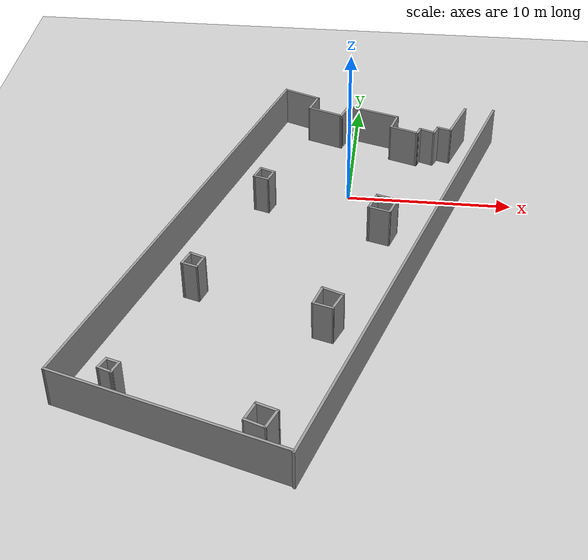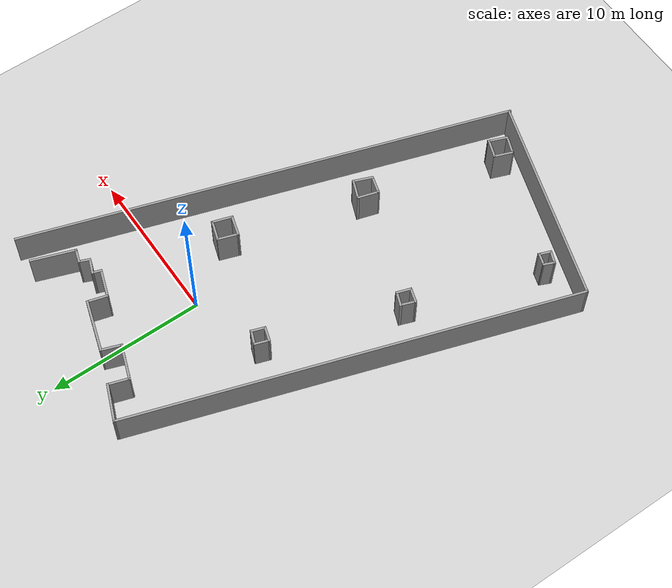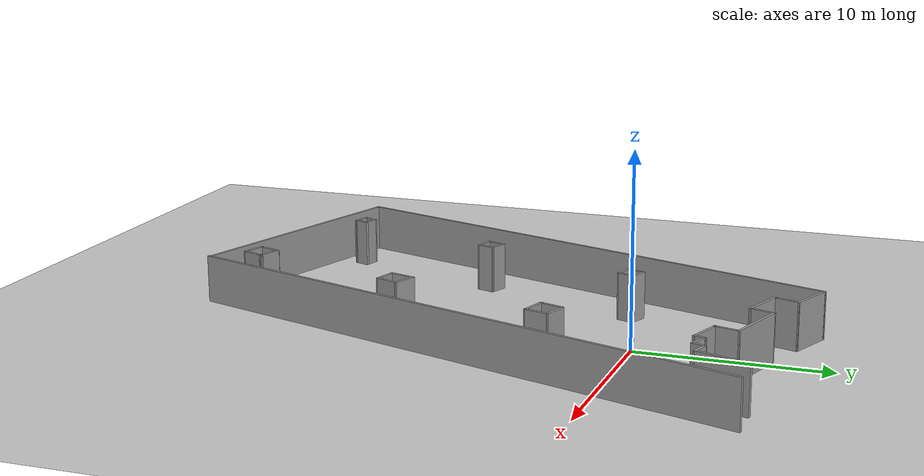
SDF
<sdf version="1.6">
 <world name="default">
  <light name="sun" type="directional">
   <pose>0 0 10 0 -0 0</pose>
   <diffuse>0.8 0.8 0.8 1</diffuse>
   <specular>0.1 0.1 0.1 1</specular>
   <attenuation>
    <range>1000</range>
    <constant>0.9</constant>
    <linear>0.01</linear>
    <quadratic>0.001</quadratic>
   </attenuation>
   <direction>-0.5 0.5 -1</direction>
  </light>
  <model name="ground_plane">
   <static>1</static>
   <link name="link">
    <collision name="collision">
     <geometry><plane><normal>0 0 1</normal><size>100 100</size></plane></geometry>
     <surface><friction><ode><mu>100</mu><mu2>50</mu2></ode></friction></surface>
    </collision>
    <visual name="visual">
     <cast_shadows>0</cast_shadows>
     <geometry><plane><normal>0 0 1</normal><size>100 100</size></plane></geometry>
     <material>
      <script><uri>file://media/materials/scripts/gazebo.material</uri><name>Gazebo/Grey</name></script>
     </material>
    </visual>
   </link>
  </model>
  <gravity>0 0 -9.8</gravity>
  <magnetic_field>6e-06 2.3e-05 -4.2e-05</magnetic_field>
  <atmosphere type="adiabatic"/>
  <physics name="default_physics" default="0" type="ode">
   <max_step_size>0.001</max_step_size>
   <real_time_factor>1</real_time_factor>
   <real_time_update_rate>1000</real_time_update_rate>
  </physics>
  <scene><ambient>0.4 0.4 0.4 1</ambient><background>0.7 0.7 0.7 1</background><shadows>1</shadows></scene>
  <spherical_coordinates>
   <surface_model>EARTH_WGS84</surface_model>
   <latitude_deg>0</latitude_deg>
   <longitude_deg>0</longitude_deg>
   <elevation>0</elevation>
   <heading_deg>0</heading_deg>
  </spherical_coordinates>
  <model name="test002">
   <pose>-2.39588 -7.39046 0 0 -0 0</pose>
   <link name="Wall_1">
    <collision name="Wall_1_Collision">
     <geometry><box><size>32.0866 0.15 2.5</size></box></geometry>
     <pose>0 0 1.25 0 -0 0</pose>
    </collision>
    <visual name="Wall_1_Visual">
     <pose>0 0 1.25 0 -0 0</pose>
     <geometry><box><size>32.0866 0.15 2.5</size></box></geometry>
     <material>
      <script><uri>file://media/materials/scripts/gazebo.material</uri><name>Gazebo/Grey</name></script>
      <ambient>1 1 1 1</ambient>
     </material>
    </visual>
    <pose>6.45597 -0.671907 0 0 0 -1.87852</pose>
   </link>
   <link name="Wall_10">
    <collision name="Wall_10_Collision">
     <geometry><box><size>3.50313 0.15 2.5</size></box></geometry>
     <pose>0 0 1.25 0 -0 0</pose>
    </collision>
    <visual name="Wall_10_Visual">
     <pose>0 0 1.25 0 -0 0</pose>
     <geometry><box><size>3.50313 0.15 2.5</size></box></geometry>
     <material>
      <script><uri>file://media/materials/scripts/gazebo.material</uri><name>Gazebo/Grey</name></script>
      <ambient>1 1 1 1</ambient>
     </material>
    </visual>
    <pose>3.49188 13.6773 0 0 0 -0.302105</pose>
   </link>
   <link name="Wall_11">
    <collision name="Wall_11_Collision">
     <geometry><box><size>1.38943 0.15 2.5</size></box></geometry>
     <pose>0 0 1.25 0 -0 0</pose>
    </collision>
    <visual name="Wall_11_Visual">
     <pose>0 0 1.25 0 -0 0</pose>
     <geometry><box><size>1.38943 0.15 2.5</size></box></geometry>
     <material>
      <script><uri>file://media/materials/scripts/gazebo.material</uri><name>Gazebo/Grey</name></script>
      <ambient>1 1 1 1</ambient>
     </material>
    </visual>
    <pose>4.92807 12.581 0 0 0 -1.83938</pose>
   </link>
   <link name="Wall_15">
    <collision name="Wall_15_Collision">
     <geometry><box><size>1.93212 0.15 2.5</size></box></geometry>
     <pose>0 0 1.25 0 -0 0</pose>
    </collision>
    <visual name="Wall_15_Visual">
     <pose>0 0 1.25 0 -0 0</pose>
     <geometry><box><size>1.93212 0.15 2.5</size></box></geometry>
     <material>
      <script><uri>file://media/materials/scripts/gazebo.material</uri><name>Gazebo/Grey</name></script>
      <ambient>1 1 1 1</ambient>
     </material>
    </visual>
    <pose>5.60727 11.6967 0 0 0 -0.327655</pose>
   </link>
   <link name="Wall_16">
    <collision name="Wall_16_Collision">
     <geometry><box><size>0.67941 0.15 2.5</size></box></geometry>
     <pose>0 0 1.25 0 -0 0</pose>
    </collision>
    <visual name="Wall_16_Visual">
     <pose>0 0 1.25 0 -0 0</pose>
     <geometry><box><size>0.67941 0.15 2.5</size></box></geometry>
     <material>
      <script><uri>file://media/materials/scripts/gazebo.material</uri><name>Gazebo/Grey</name></script>
      <ambient>1 1 1 1</ambient>
     </material>
    </visual>
    <pose>6.53554 11.6607 0 0 -0 1.24544</pose>
   </link>
   <link name="Wall_17">
    <collision name="Wall_17_Collision">
     <geometry><box><size>0.980533 0.15 2.5</size></box></geometry>
     <pose>0 0 1.25 0 -0 0</pose>
    </collision>
    <visual name="Wall_17_Visual">
     <pose>0 0 1.25 0 -0 0</pose>
     <geometry><box><size>0.980533 0.15 2.5</size></box></geometry>
     <material>
      <script><uri>file://media/materials/scripts/gazebo.material</uri><name>Gazebo/Grey</name></script>
      <ambient>1 1 1 1</ambient>
     </material>
    </visual>
    <pose>7.00695 11.7605 0 0 0 -0.372398</pose>
   </link>
   <link name="Wall_19">
    <collision name="Wall_19_Collision">
     <geometry><box><size>0.805522 0.15 2.5</size></box></geometry>
     <pose>0 0 1.25 0 -0 0</pose>
    </collision>
    <visual name="Wall_19_Visual">
     <pose>0 0 1.25 0 -0 0</pose>
     <geometry><box><size>0.805522 0.15 2.5</size></box></geometry>
     <material>
      <script><uri>file://media/materials/scripts/gazebo.material</uri><name>Gazebo/Grey</name></script>
      <ambient>1 1 1 1</ambient>
     </material>
    </visual>
    <pose>7.61957 11.8763 0 0 -0 1.17317</pose>
   </link>
   <link name="Wall_20">
    <collision name="Wall_20_Collision">
     <geometry><box><size>0.975681 0.15 2.5</size></box></geometry>
     <pose>0 0 1.25 0 -0 0</pose>
    </collision>
    <visual name="Wall_20_Visual">
     <pose>0 0 1.25 0 -0 0</pose>
     <geometry><box><size>0.975681 0.15 2.5</size></box></geometry>
     <material>
      <script><uri>file://media/materials/scripts/gazebo.material</uri><name>Gazebo/Grey</name></script>
      <ambient>1 1 1 1</ambient>
     </material>
    </visual>
    <pose>8.13934 12.0515 0 0 0 -0.312492</pose>
   </link>
   <link name="Wall_21">
    <collision name="Wall_21_Collision">
     <geometry><box><size>2.94464 0.15 2.5</size></box></geometry>
     <pose>0 0 1.25 0 -0 0</pose>
    </collision>
    <visual name="Wall_21_Visual">
     <pose>0 0 1.25 0 -0 0</pose>
     <geometry><box><size>2.94464 0.15 2.5</size></box></geometry>
     <material>
      <script><uri>file://media/materials/scripts/gazebo.material</uri><name>Gazebo/Grey</name></script>
      <ambient>1 1 1 1</ambient>
     </material>
    </visual>
    <pose>8.99756 13.2422 0 0 -0 1.23126</pose>
   </link>
   <link name="Wall_23">
    <collision name="Wall_23_Collision">
     <geometry><box><size>1.40448 0.15 2.5</size></box></geometry>
     <pose>0 0 1.25 0 -0 0</pose>
    </collision>
    <visual name="Wall_23_Visual">
     <pose>0 0 1.25 0 -0 0</pose>
     <geometry><box><size>1.40448 0.15 2.5</size></box></geometry>
     <material>
      <script><uri>file://media/materials/scripts/gazebo.material</uri><name>Gazebo/Grey</name></script>
      <ambient>1 1 1 1</ambient>
     </material>
    </visual>
    <pose>4.07698 3.85386 0 0 0 -1.89603</pose>
   </link>
   <link name="Wall_24">
    <collision name="Wall_24_Collision">
     <geometry><box><size>1.43554 0.15 2.5</size></box></geometry>
     <pose>0 0 1.25 0 -0 0</pose>
    </collision>
    <visual name="Wall_24_Visual">
     <pose>0 0 1.25 0 -0 0</pose>
     <geometry><box><size>1.43554 0.15 2.5</size></box></geometry>
     <material>
      <script><uri>file://media/materials/scripts/gazebo.material</uri><name>Gazebo/Grey</name></script>
      <ambient>1 1 1 1</ambient>
     </material>
    </visual>
    <pose>4.49165 3.07291 0 0 0 -0.294546</pose>
   </link>
   <link name="Wall_25">
    <collision name="Wall_25_Collision">
     <geometry><box><size>1.39592 0.15 2.5</size></box></geometry>
     <pose>0 0 1.25 0 -0 0</pose>
    </collision>
    <visual name="Wall_25_Visual">
     <pose>0 0 1.25 0 -0 0</pose>
     <geometry><box><size>1.39592 0.15 2.5</size></box></geometry>
     <material>
      <script><uri>file://media/materials/scripts/gazebo.material</uri><name>Gazebo/Grey</name></script>
      <ambient>1 1 1 1</ambient>
     </material>
    </visual>
    <pose>5.29334 3.48067 0 0 -0 1.26659</pose>
   </link>
   <link name="Wall_26">
    <collision name="Wall_26_Collision">
     <geometry><box><size>1.38699 0.15 2.5</size></box></geometry>
     <pose>0 0 1.25 0 -0 0</pose>
    </collision>
    <visual name="Wall_26_Visual">
     <pose>0 0 1.25 0 -0 0</pose>
     <geometry><box><size>1.38699 0.15 2.5</size></box></geometry>
     <material>
      <script><uri>file://media/materials/scripts/gazebo.material</uri><name>Gazebo/Grey</name></script>
      <ambient>1 1 1 1</ambient>
     </material>
    </visual>
    <pose>4.89249 4.26853 0 0 -0 2.82338</pose>
   </link>
   <link name="Wall_28">
    <collision name="Wall_28_Collision">
     <geometry><box><size>1.01242 0.15 2.5</size></box></geometry>
     <pose>0 0 1.25 0 -0 0</pose>
    </collision>
    <visual name="Wall_28_Visual">
     <pose>0 0 1.25 0 -0 0</pose>
     <geometry><box><size>1.01242 0.15 2.5</size></box></geometry>
     <material>
      <script><uri>file://media/materials/scripts/gazebo.material</uri><name>Gazebo/Grey</name></script>
      <ambient>1 1 1 1</ambient>
     </material>
    </visual>
    <pose>-2.4955 6.40407 0 0 0 -0.37753</pose>
   </link>
   <link name="Wall_29">
    <collision name="Wall_29_Collision">
     <geometry><box><size>0.98496 0.15 2.5</size></box></geometry>
     <pose>0 0 1.25 0 -0 0</pose>
    </collision>
    <visual name="Wall_29_Visual">
     <pose>0 0 1.25 0 -0 0</pose>
     <geometry><box><size>0.98496 0.15 2.5</size></box></geometry>
     <material>
      <script><uri>file://media/materials/scripts/gazebo.material</uri><name>Gazebo/Grey</name></script>
      <ambient>1 1 1 1</ambient>
     </material>
    </visual>
    <pose>-2.23287 5.85118 0 0 0 -1.90825</pose>
   </link>
   <link name="Wall_30">
    <collision name="Wall_30_Collision">
     <geometry><box><size>1.01992 0.15 2.5</size></box></geometry>
     <pose>0 0 1.25 0 -0 0</pose>
    </collision>
    <visual name="Wall_30_Visual">
     <pose>0 0 1.25 0 -0 0</pose>
     <geometry><box><size>1.01992 0.15 2.5</size></box></geometry>
     <material>
      <script><uri>file://media/materials/scripts/gazebo.material</uri><name>Gazebo/Grey</name></script>
      <ambient>1 1 1 1</ambient>
     </material>
    </visual>
    <pose>-2.78576 5.58856 0 0 -0 2.83492</pose>
   </link>
   <link name="Wall_31">
    <collision name="Wall_31_Collision">
     <geometry><box><size>1.02419 0.15 2.5</size></box></geometry>
     <pose>0 0 1.25 0 -0 0</pose>
    </collision>
    <visual name="Wall_31_Visual">
     <pose>0 0 1.25 0 -0 0</pose>
     <geometry><box><size>1.02419 0.15 2.5</size></box></geometry>
     <material>
      <script><uri>file://media/materials/scripts/gazebo.material</uri><name>Gazebo/Grey</name></script>
      <ambient>1 1 1 1</ambient>
     </material>
    </visual>
    <pose>-3.06221 6.13453 0 0 -0 1.24905</pose>
   </link>
   <link name="Wall_33">
    <collision name="Wall_33_Collision">
     <geometry><box><size>1.02078 0.15 2.5</size></box></geometry>
     <pose>0 0 1.25 0 -0 0</pose>
    </collision>
    <visual name="Wall_33_Visual">
     <pose>0 0 1.25 0 -0 0</pose>
     <geometry><box><size>1.02078 0.15 2.5</size></box></geometry>
     <material>
      <script><uri>file://media/materials/scripts/gazebo.material</uri><name>Gazebo/Grey</name></script>
      <ambient>1 1 1 1</ambient>
     </material>
    </visual>
    <pose>-5.30883 -2.15196 0 0 0 -0.373727</pose>
   </link>
   <link name="Wall_34">
    <collision name="Wall_34_Collision">
     <geometry><box><size>1.01962 0.15 2.5</size></box></geometry>
     <pose>0 0 1.25 0 -0 0</pose>
    </collision>
    <visual name="Wall_34_Visual">
     <pose>0 0 1.25 0 -0 0</pose>
     <geometry><box><size>1.01962 0.15 2.5</size></box></geometry>
     <material>
      <script><uri>file://media/materials/scripts/gazebo.material</uri><name>Gazebo/Grey</name></script>
      <ambient>1 1 1 1</ambient>
     </material>
    </visual>
    <pose>-5.0386 -2.7242 0 0 0 -1.88677</pose>
   </link>
   <link name="Wall_35">
    <collision name="Wall_35_Collision">
     <geometry><box><size>1.03474 0.15 2.5</size></box></geometry>
     <pose>0 0 1.25 0 -0 0</pose>
    </collision>
    <visual name="Wall_35_Visual">
     <pose>0 0 1.25 0 -0 0</pose>
     <geometry><box><size>1.03474 0.15 2.5</size></box></geometry>
     <material>
      <script><uri>file://media/materials/scripts/gazebo.material</uri><name>Gazebo/Grey</name></script>
      <ambient>1 1 1 1</ambient>
     </material>
    </visual>
    <pose>-5.59495 -3.00237 0 0 -0 2.83121</pose>
   </link>
   <link name="Wall_36">
    <collision name="Wall_36_Collision">
     <geometry><box><size>1.04496 0.15 2.5</size></box></geometry>
     <pose>0 0 1.25 0 -0 0</pose>
    </collision>
    <visual name="Wall_36_Visual">
     <pose>0 0 1.25 0 -0 0</pose>
     <geometry><box><size>1.04496 0.15 2.5</size></box></geometry>
     <material>
      <script><uri>file://media/materials/scripts/gazebo.material</uri><name>Gazebo/Grey</name></script>
      <ambient>1 1 1 1</ambient>
     </material>
    </visual>
    <pose>-5.86517 -2.44602 0 0 -0 1.22658</pose>
   </link>
   <link name="Wall_38">
    <collision name="Wall_38_Collision">
     <geometry><box><size>1.44263 0.15 2.5</size></box></geometry>
     <pose>0 0 1.25 0 -0 0</pose>
    </collision>
    <visual name="Wall_38_Visual">
     <pose>0 0 1.25 0 -0 0</pose>
     <geometry><box><size>1.44263 0.15 2.5</size></box></geometry>
     <material>
      <script><uri>file://media/materials/scripts/gazebo.material</uri><name>Gazebo/Grey</name></script>
      <ambient>1 1 1 1</ambient>
     </material>
    </visual>
    <pose>1.65343 -4.886 0 0 0 -1.85754</pose>
   </link>
   <link name="Wall_39">
    <collision name="Wall_39_Collision">
     <geometry><box><size>1.26144 0.15 2.5</size></box></geometry>
     <pose>0 0 1.25 0 -0 0</pose>
    </collision>
    <visual name="Wall_39_Visual">
     <pose>0 0 1.25 0 -0 0</pose>
     <geometry><box><size>1.26144 0.15 2.5</size></box></geometry>
     <material>
      <script><uri>file://media/materials/scripts/gazebo.material</uri><name>Gazebo/Grey</name></script>
      <ambient>1 1 1 1</ambient>
     </material>
    </visual>
    <pose>2.00314 -5.66488 0 0 0 -0.290087</pose>
   </link>
   <link name="Wall_4">
    <collision name="Wall_4_Collision">
     <geometry><box><size>13.6587 0.15 2.5</size></box></geometry>
     <pose>0 0 1.25 0 -0 0</pose>
    </collision>
    <visual name="Wall_4_Visual">
     <pose>0 0 1.25 0 -0 0</pose>
     <geometry><box><size>13.6587 0.15 2.5</size></box></geometry>
     <material>
      <script><uri>file://media/materials/scripts/gazebo.material</uri><name>Gazebo/Grey</name></script>
      <ambient>1 1 1 1</ambient>
     </material>
    </visual>
    <pose>-4.8592 -13.7419 0 0 -0 2.83202</pose>
   </link>
   <link name="Wall_40">
    <collision name="Wall_40_Collision">
     <geometry><box><size>1.36318 0.15 2.5</size></box></geometry>
     <pose>0 0 1.25 0 -0 0</pose>
    </collision>
    <visual name="Wall_40_Visual">
     <pose>0 0 1.25 0 -0 0</pose>
     <geometry><box><size>1.36318 0.15 2.5</size></box></geometry>
     <material>
      <script><uri>file://media/materials/scripts/gazebo.material</uri><name>Gazebo/Grey</name></script>
      <ambient>1 1 1 1</ambient>
     </material>
    </visual>
    <pose>2.75818 -5.25954 0 0 -0 1.19516</pose>
   </link>
   <link name="Wall_41">
    <collision name="Wall_41_Collision">
     <geometry><box><size>1.38383 0.15 2.5</size></box></geometry>
     <pose>0 0 1.25 0 -0 0</pose>
    </collision>
    <visual name="Wall_41_Visual">
     <pose>0 0 1.25 0 -0 0</pose>
     <geometry><box><size>1.38383 0.15 2.5</size></box></geometry>
     <material>
      <script><uri>file://media/materials/scripts/gazebo.material</uri><name>Gazebo/Grey</name></script>
      <ambient>1 1 1 1</ambient>
     </material>
    </visual>
    <pose>2.40848 -4.46476 0 0 -0 2.75869</pose>
   </link>
   <link name="Wall_43">
    <collision name="Wall_43_Collision">
     <geometry><box><size>0.881944 0.15 2.5</size></box></geometry>
     <pose>0 0 1.25 0 -0 0</pose>
    </collision>
    <visual name="Wall_43_Visual">
     <pose>0 0 1.25 0 -0 0</pose>
     <geometry><box><size>0.881944 0.15 2.5</size></box></geometry>
     <material>
      <script><uri>file://media/materials/scripts/gazebo.material</uri><name>Gazebo/Grey</name></script>
      <ambient>1 1 1 1</ambient>
     </material>
    </visual>
    <pose>-7.80175 -11.2549 0 0 0 -1.92379</pose>
   </link>
   <link name="Wall_44">
    <collision name="Wall_44_Collision">
     <geometry><box><size>0.926988 0.15 2.5</size></box></geometry>
     <pose>0 0 1.25 0 -0 0</pose>
    </collision>
    <visual name="Wall_44_Visual">
     <pose>0 0 1.25 0 -0 0</pose>
     <geometry><box><size>0.926988 0.15 2.5</size></box></geometry>
     <material>
      <script><uri>file://media/materials/scripts/gazebo.material</uri><name>Gazebo/Grey</name></script>
      <ambient>1 1 1 1</ambient>
     </material>
    </visual>
    <pose>-8.28975 -11.456 0 0 -0 2.76649</pose>
   </link>
   <link name="Wall_45">
    <collision name="Wall_45_Collision">
     <geometry><box><size>0.825801 0.15 2.5</size></box></geometry>
     <pose>0 0 1.25 0 -0 0</pose>
    </collision>
    <visual name="Wall_45_Visual">
     <pose>0 0 1.25 0 -0 0</pose>
     <geometry><box><size>0.825801 0.15 2.5</size></box></geometry>
     <material>
      <script><uri>file://media/materials/scripts/gazebo.material</uri><name>Gazebo/Grey</name></script>
      <ambient>1 1 1 1</ambient>
     </material>
    </visual>
    <pose>-8.51568 -11.0042 0 0 -0 1.158</pose>
   </link>
   <link name="Wall_46">
    <collision name="Wall_46_Collision">
     <geometry><box><size>0.855959 0.15 2.5</size></box></geometry>
     <pose>0 0 1.25 0 -0 0</pose>
    </collision>
    <visual name="Wall_46_Visual">
     <pose>0 0 1.25 0 -0 0</pose>
     <geometry><box><size>0.855959 0.15 2.5</size></box></geometry>
     <material>
      <script><uri>file://media/materials/scripts/gazebo.material</uri><name>Gazebo/Grey</name></script>
      <ambient>1 1 1 1</ambient>
     </material>
    </visual>
    <pose>-8.04349 -10.8008 0 0 0 -0.305558</pose>
   </link>
   <link name="Wall_5">
    <collision name="Wall_5_Collision">
     <geometry><box><size>29.1085 0.15 2.5</size></box></geometry>
     <pose>0 0 1.25 0 -0 0</pose>
    </collision>
    <visual name="Wall_5_Visual">
     <pose>0 0 1.25 0 -0 0</pose>
     <geometry><box><size>29.1085 0.15 2.5</size></box></geometry>
     <material>
      <script><uri>file://media/materials/scripts/gazebo.material</uri><name>Gazebo/Grey</name></script>
      <ambient>1 1 1 1</ambient>
     </material>
    </visual>
    <pose>-6.86403 2.10122 0 0 -0 1.25997</pose>
   </link>
   <link name="Wall_50">
    <collision name="Wall_50_Collision">
     <geometry><box><size>1.31767 0.15 2.5</size></box></geometry>
     <pose>0 0 1.25 0 -0 0</pose>
    </collision>
    <visual name="Wall_50_Visual">
     <pose>0 0 1.25 0 -0 0</pose>
     <geometry><box><size>1.31767 0.15 2.5</size></box></geometry>
     <material>
      <script><uri>file://media/materials/scripts/gazebo.material</uri><name>Gazebo/Grey</name></script>
      <ambient>1 1 1 1</ambient>
     </material>
    </visual>
    <pose>-0.748685 -13.5476 0 0 0 -1.92957</pose>
   </link>
   <link name="Wall_51">
    <collision name="Wall_51_Collision">
     <geometry><box><size>1.30096 0.15 2.5</size></box></geometry>
     <pose>0 0 1.25 0 -0 0</pose>
    </collision>
    <visual name="Wall_51_Visual">
     <pose>0 0 1.25 0 -0 0</pose>
     <geometry><box><size>1.30096 0.15 2.5</size></box></geometry>
     <material>
      <script><uri>file://media/materials/scripts/gazebo.material</uri><name>Gazebo/Grey</name></script>
      <ambient>1 1 1 1</ambient>
     </material>
    </visual>
    <pose>-0.41727 -14.3026 0 0 0 -0.370584</pose>
   </link>
   <link name="Wall_52">
    <collision name="Wall_52_Collision">
     <geometry><box><size>1.34912 0.15 2.5</size></box></geometry>
     <pose>0 0 1.25 0 -0 0</pose>
    </collision>
    <visual name="Wall_52_Visual">
     <pose>0 0 1.25 0 -0 0</pose>
     <geometry><box><size>1.34912 0.15 2.5</size></box></geometry>
     <material>
      <script><uri>file://media/materials/scripts/gazebo.material</uri><name>Gazebo/Grey</name></script>
      <ambient>1 1 1 1</ambient>
     </material>
    </visual>
    <pose>0.341226 -13.9541 0 0 -0 1.19135</pose>
   </link>
   <link name="Wall_53">
    <collision name="Wall_53_Collision">
     <geometry><box><size>1.31295 0.15 2.5</size></box></geometry>
     <pose>0 0 1.25 0 -0 0</pose>
    </collision>
    <visual name="Wall_53_Visual">
     <pose>0 0 1.25 0 -0 0</pose>
     <geometry><box><size>1.31295 0.15 2.5</size></box></geometry>
     <material>
      <script><uri>file://media/materials/scripts/gazebo.material</uri><name>Gazebo/Grey</name></script>
      <ambient>1 1 1 1</ambient>
     </material>
    </visual>
    <pose>0.016644 -13.1991 0 0 -0 2.79383</pose>
   </link>
   <link name="Wall_55">
    <collision name="Wall_55_Collision">
     <geometry><box><size>0.170812 0.15 2.5</size></box></geometry>
     <pose>0 0 1.25 0 -0 0</pose>
    </collision>
    <visual name="Wall_55_Visual">
     <pose>0 0 1.25 0 -0 0</pose>
     <geometry><box><size>0.170812 0.15 2.5</size></box></geometry>
     <material>
      <script><uri>file://media/materials/scripts/gazebo.material</uri><name>Gazebo/Grey</name></script>
      <ambient>1 1 1 1</ambient>
     </material>
    </visual>
    <pose>2.42727 7.42945 0 0 -0 0</pose>
   </link>
   <link name="Wall_6">
    <collision name="Wall_6_Collision">
     <geometry><box><size>2.51233 0.15 2.5</size></box></geometry>
     <pose>0 0 1.25 0 -0 0</pose>
    </collision>
    <visual name="Wall_6_Visual">
     <pose>0 0 1.25 0 -0 0</pose>
     <geometry><box><size>2.51233 0.15 2.5</size></box></geometry>
     <material>
      <script><uri>file://media/materials/scripts/gazebo.material</uri><name>Gazebo/Grey</name></script>
      <ambient>1 1 1 1</ambient>
     </material>
    </visual>
    <pose>-1.34109 15.4425 0 0 0 -0.385482</pose>
   </link>
   <link name="Wall_7">
    <collision name="Wall_7_Collision">
     <geometry><box><size>1.4502 0.15 2.5</size></box></geometry>
     <pose>0 0 1.25 0 -0 0</pose>
    </collision>
    <visual name="Wall_7_Visual">
     <pose>0 0 1.25 0 -0 0</pose>
     <geometry><box><size>1.4502 0.15 2.5</size></box></geometry>
     <material>
      <script><uri>file://media/materials/scripts/gazebo.material</uri><name>Gazebo/Grey</name></script>
      <ambient>1 1 1 1</ambient>
     </material>
    </visual>
    <pose>-0.443939 14.3789 0 0 0 -1.87921</pose>
   </link>
   <link name="Wall_8">
    <collision name="Wall_8_Collision">
     <geometry><box><size>2.39707 0.15 2.5</size></box></geometry>
     <pose>0 0 1.25 0 -0 0</pose>
    </collision>
    <visual name="Wall_8_Visual">
     <pose>0 0 1.25 0 -0 0</pose>
     <geometry><box><size>2.39707 0.15 2.5</size></box></geometry>
     <material>
      <script><uri>file://media/materials/scripts/gazebo.material</uri><name>Gazebo/Grey</name></script>
      <ambient>1 1 1 1</ambient>
     </material>
    </visual>
    <pose>0.416678 13.3813 0 0 0 -0.343352</pose>
   </link>
   <link name="Wall_9">
    <collision name="Wall_9_Collision">
     <geometry><box><size>1.39485 0.15 2.5</size></box></geometry>
     <pose>0 0 1.25 0 -0 0</pose>
    </collision>
    <visual name="Wall_9_Visual">
     <pose>0 0 1.25 0 -0 0</pose>
     <geometry><box><size>1.39485 0.15 2.5</size></box></geometry>
     <material>
      <script><uri>file://media/materials/scripts/gazebo.material</uri><name>Gazebo/Grey</name></script>
      <ambient>1 1 1 1</ambient>
     </material>
    </visual>
    <pose>1.68294 13.5896 0 0 -0 1.22955</pose>
   </link>
   <static>1</static>
  </model>
 </world>
</sdf>
